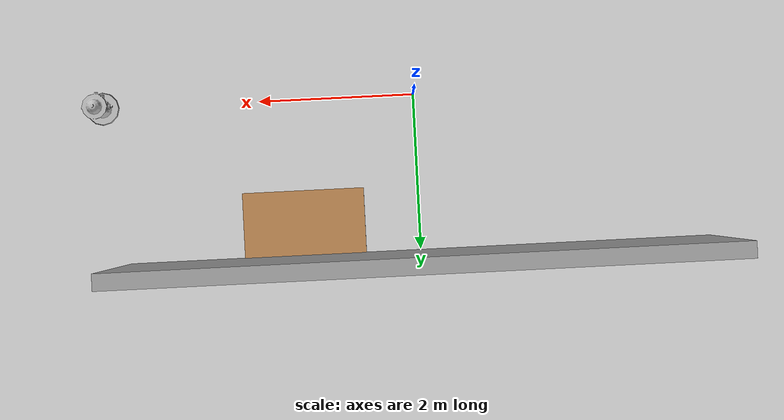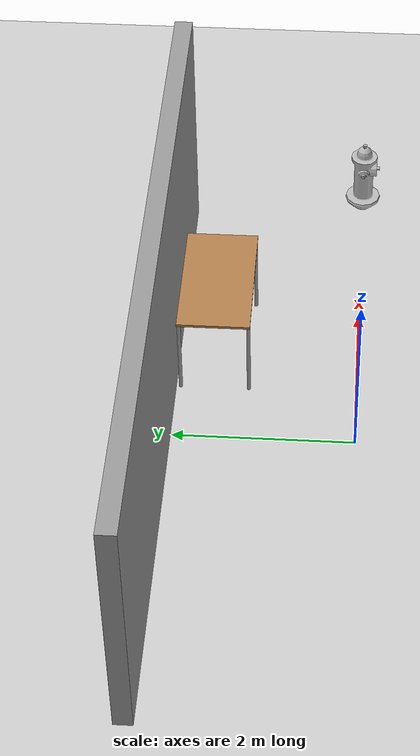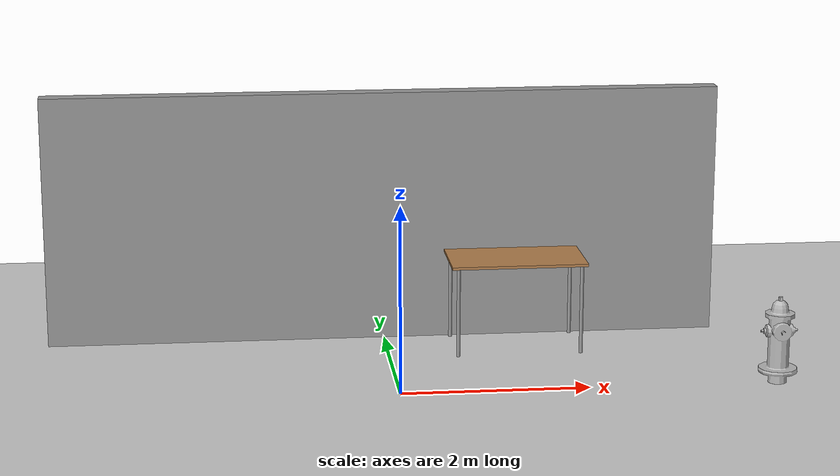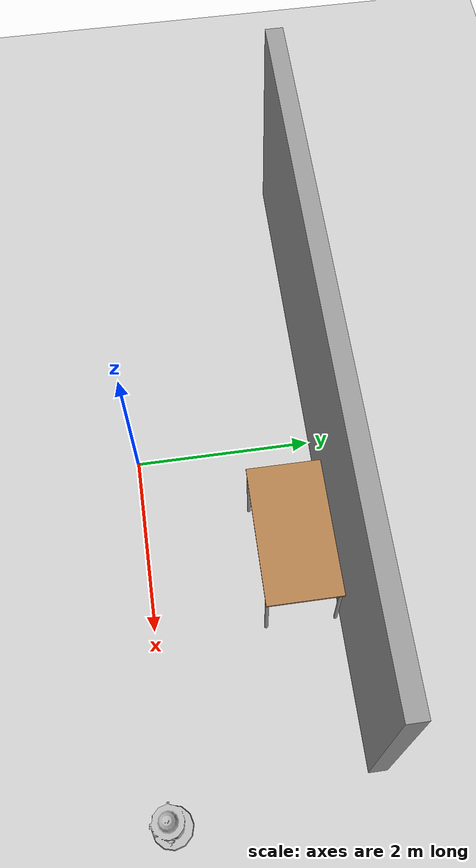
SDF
<sdf version="1.4">
 <world name="trials_task_8">
  <physics type="ode">
   <gravity>0 0 -9.81</gravity>
   <ode>
    <solver>
     <use_dynamic_moi_rescaling>true</use_dynamic_moi_rescaling>
     <type>quick</type>
     <iters>50</iters>
     <sor>1.4</sor>
    </solver>
    <constraints>
     <cfm>0.0</cfm>
     <erp>0.2</erp>
     <contact_max_correcting_vel>100.0</contact_max_correcting_vel>
     <contact_surface_layer>0.0</contact_surface_layer>
    </constraints>
   </ode>
   <real_time_update_rate>1000</real_time_update_rate>
   <max_step_size>0.001</max_step_size>
  </physics>
  <physics name="preset_1" type="ode">
   <gravity>0 0 -9.81</gravity>
   <ode>
    <solver><type>quick</type><iters>50</iters><sor>1.0</sor></solver>
    <constraints>
     <cfm>0.0</cfm>
     <erp>0.2</erp>
     <contact_max_correcting_vel>100.0</contact_max_correcting_vel>
     <contact_surface_layer>0.0</contact_surface_layer>
    </constraints>
   </ode>
   <real_time_update_rate>2000</real_time_update_rate>
   <max_step_size>0.0005</max_step_size>
  </physics>
  <physics name="preset_2" type="ode">
   <gravity>0 0 -9.81</gravity>
   <ode>
    <solver><type>quick</type><iters>200</iters><sor>1.0</sor></solver>
    <constraints>
     <cfm>0.0</cfm>
     <erp>0.2</erp>
     <contact_max_correcting_vel>100.0</contact_max_correcting_vel>
     <contact_surface_layer>0.0</contact_surface_layer>
    </constraints>
   </ode>
   <real_time_update_rate>2000</real_time_update_rate>
   <max_step_size>0.0005</max_step_size>
  </physics>
  <include><uri>model://sun</uri></include>
  <include><uri>model://ground_plane</uri></include>
  <include><uri>model://fire_hydrant</uri><pose>4.0 0 0 0 0 0</pose></include>
  <include><uri>model://table</uri><static>true</static><pose>1.43 1.58 0 0 0 0</pose></include>
  <include><uri>model://grey_wall</uri><static>true</static><pose>0 2.11 0 0 0 0</pose></include>
  <plugin filename="libVRCPlugin.so" name="vrc_plugin">
   <atlas><model_name>atlas</model_name><pin_link>utorso</pin_link></atlas>
   <drc_vehicle>
    <model_name>drc_vehicle</model_name>
    <seat_link>polaris_ranger_ev::chassis</seat_link>
   </drc_vehicle>
   <drc_fire_hose>
    <fire_hose_model>fire_hose_long_curled</fire_hose_model>
    <coupling_link>coupling</coupling_link>
    <standpipe_model>standpipe</standpipe_model>
    <spout_link>standpipe</spout_link>
    <thread_pitch>-1000</thread_pitch>
    <coupling_relative_pose>-0.000368 -3.5e-05 0.020779 2.09531 1.5666 0.460447</coupling_relative_pose>
   </drc_fire_hose>
  </plugin>
 </world>
</sdf>

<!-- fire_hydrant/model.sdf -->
<sdf version="1.5">
  <model name="fire_hydrant">
    <static>true</static>
    <link name="link">
      <collision name="collision">
        <geometry>
          <mesh>
            <uri>file://isr-testbed/fire_hydrant/meshes/fire_hydrant.dae</uri>
          </mesh>
        </geometry>
      </collision>
      <visual name="visual">
        <geometry>
          <mesh>
            <uri>file://isr-testbed/fire_hydrant/meshes/fire_hydrant.dae</uri>
          </mesh>
        </geometry>
      </visual>
    </link>
  </model>
</sdf>

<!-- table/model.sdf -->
<sdf version="1.5">
  <model name="table">
    <static>true</static>
    <link name="link">
      <collision name="surface">
        <pose>0 0 1.0 0 0 0</pose>
        <geometry>
          <box>
            <size>1.5 0.8 0.03</size>
          </box>
        </geometry>
        <surface>
          <friction>
            <ode>
              <mu>0.6</mu>
              <mu2>0.6</mu2>
            </ode>
          </friction>
        </surface>
      </collision>
      <visual name="visual1">
        <pose>0 0 1.0 0 0 0</pose>
        <geometry>
          <box>
            <size>1.5 0.8 0.03</size>
          </box>
        </geometry>
        <material>
          <script>
            <uri>model://media/materials/scripts/gazebo.material</uri>
            <name>Gazebo/Wood</name>
          </script>
        </material>
      </visual>
      <collision name="front_left_leg">
        <pose>0.68 0.38 0.5 0 0 0</pose>
        <geometry>
          <cylinder>
            <radius>0.02</radius>
            <length>1.0</length>
          </cylinder>
        </geometry>
      </collision>
      <visual name="front_left_leg">
        <pose>0.68 0.38 0.5 0 0 0</pose>
        <geometry>
          <cylinder>
            <radius>0.02</radius>
            <length>1.0</length>
          </cylinder>
        </geometry>
        <material>
          <script>
            <uri>model://media/materials/scripts/gazebo.material</uri>
            <name>Gazebo/Grey</name>
          </script>
        </material>
      </visual>
      <collision name="front_right_leg">
        <pose>0.68 -0.38 0.5 0 0 0</pose>
        <geometry>
          <cylinder>
            <radius>0.02</radius>
            <length>1.0</length>
          </cylinder>
        </geometry>
      </collision>
      <visual name="front_right_leg">
        <pose>0.68 -0.38 0.5 0 0 0</pose>
        <geometry>
          <cylinder>
            <radius>0.02</radius>
            <length>1.0</length>
          </cylinder>
        </geometry>
        <material>
          <script>
            <uri>model://media/materials/scripts/gazebo.material</uri>
            <name>Gazebo/Grey</name>
          </script>
        </material>
      </visual>
      <collision name="back_right_leg">
        <pose>-0.68 -0.38 0.5 0 0 0</pose>
        <geometry>
          <cylinder>
            <radius>0.02</radius>
            <length>1.0</length>
          </cylinder>
        </geometry>
      </collision>
      <visual name="back_right_leg">
        <pose>-0.68 -0.38 0.5 0 0 0</pose>
        <geometry>
          <cylinder>
            <radius>0.02</radius>
            <length>1.0</length>
          </cylinder>
        </geometry>
        <material>
          <script>
            <uri>model://media/materials/scripts/gazebo.material</uri>
            <name>Gazebo/Grey</name>
          </script>
        </material>
      </visual>
      <collision name="back_left_leg">
        <pose>-0.68 0.38 0.5 0 0 0</pose>
        <geometry>
          <cylinder>
            <radius>0.02</radius>
            <length>1.0</length>
          </cylinder>
        </geometry>
      </collision>
      <visual name="back_left_leg">
        <pose>-0.68 0.38 0.5 0 0 0</pose>
        <geometry>
          <cylinder>
            <radius>0.02</radius>
            <length>1.0</length>
          </cylinder>
        </geometry>
        <material>
          <script>
            <uri>model://media/materials/scripts/gazebo.material</uri>
            <name>Gazebo/Grey</name>
          </script>
        </material>
      </visual>
    </link>
  </model>
</sdf>

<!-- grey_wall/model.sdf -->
<sdf version="1.5">
  <model name="grey_wall">
    <static>true</static>
    <link name="link">
      <pose>0 0 1.4 0 0 0</pose>
      <collision name="collision">
        <geometry>
          <box>
            <size>7.5 0.2 2.8</size>
          </box>
        </geometry>
      </collision>
      <visual name="visual">
        <cast_shadows>false</cast_shadows>
        <geometry>
          <box>
            <size>7.5 0.2 2.8</size>
          </box>
        </geometry>
        <material>
          <script>
            <uri>model://../model_source/models/grey_wall/materials/scripts</uri>
            <uri>model://../model_source/models/grey_wall/materials/textures</uri>
            <name>vrc/grey_wall</name>
          </script>
        </material>
      </visual>
    </link>
  </model>
</sdf>
